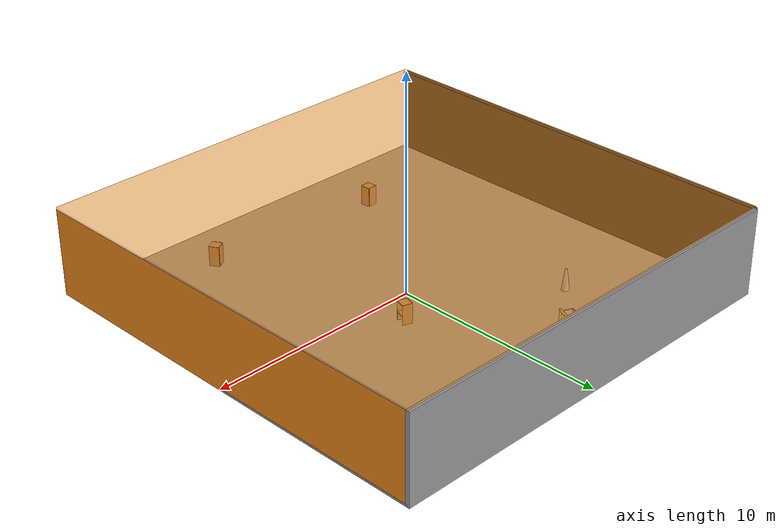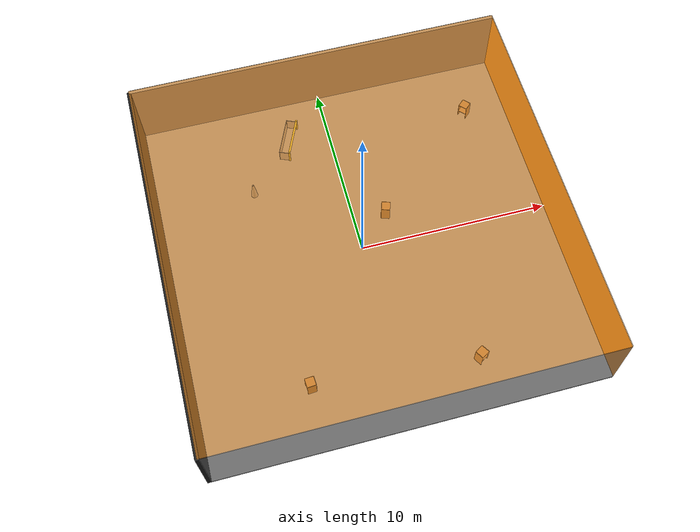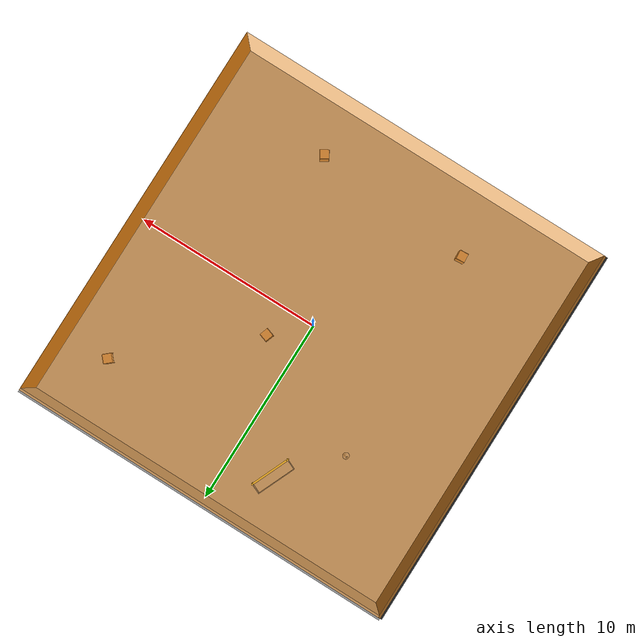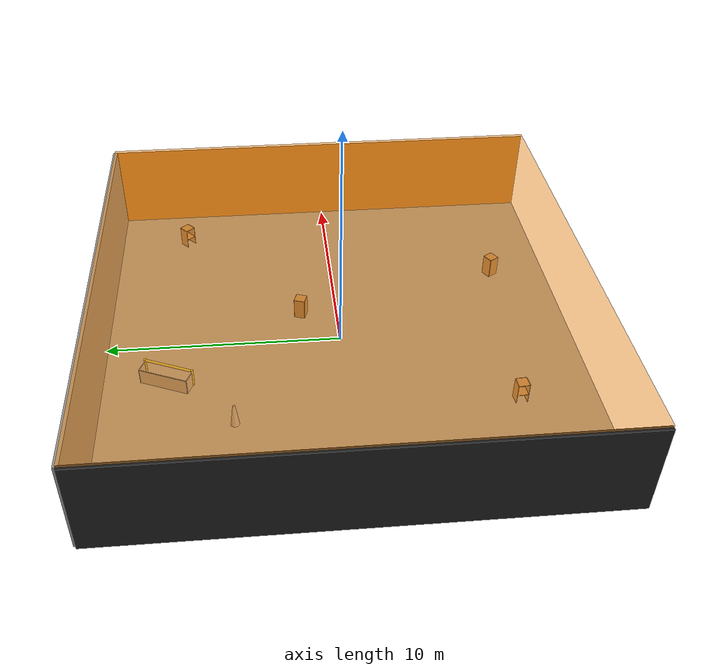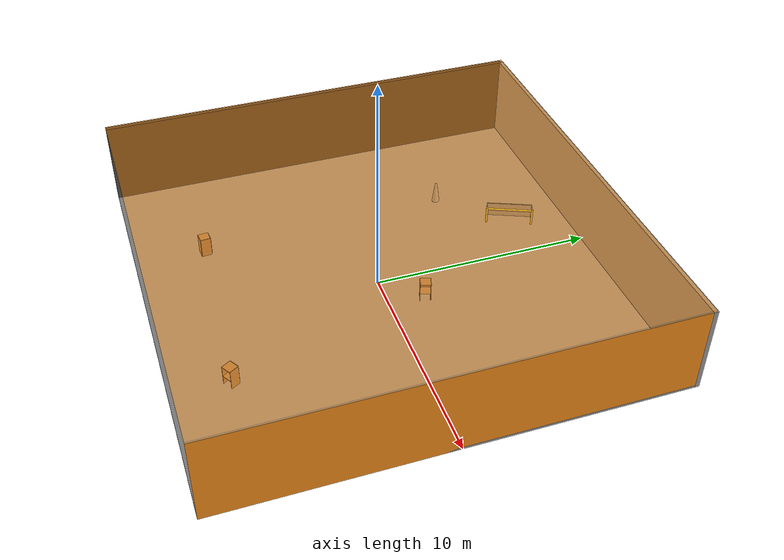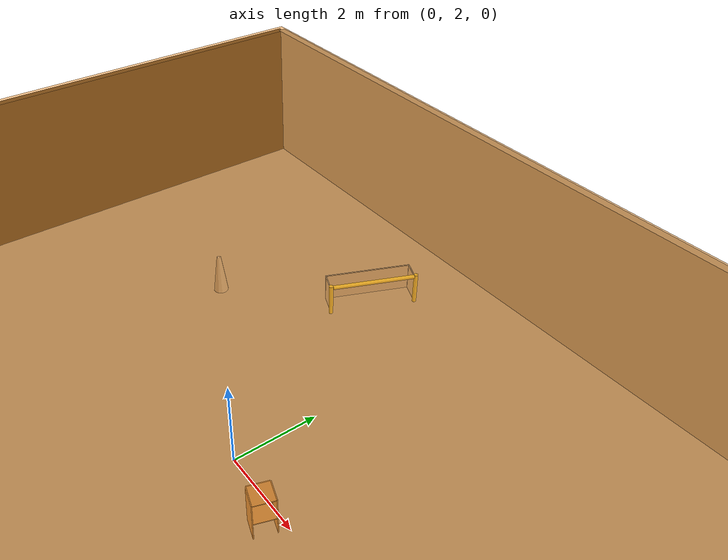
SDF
<sdf version="1.4">
 <world name="default">
  <physics type="ode">
   <max_step_size>0.001</max_step_size>
   <real_time_factor>1</real_time_factor>
   <real_time_update_rate>1000</real_time_update_rate>
   <gravity>0 0 -9.8</gravity>
  </physics>
  <scene><ambient>0.4 0.4 0.4 1</ambient><background>0.7 0.7 0.7 1</background><shadows>1</shadows></scene>
  <model name="Surrounding">
   <static>1</static>
   <link name="Ceiling">
    <collision name="Ceiling_Collision"><geometry><box><size>20 20 0.1</size></box></geometry></collision>
    <visual name="Ceiling_Visual">
     <geometry><box><size>20 20 0.1</size></box></geometry>
     <material>
      <script>
       <uri>file://media/materials/scripts/gazebo.material</uri>
       <name>Gazebo/OrangeTransparent</name>
      </script>
     </material>
    </visual>
    <pose>0 0 4.05 0 0 0</pose>
   </link>
   <link name="Wall_South">
    <collision name="Wall_South_Collision">
     <geometry><box><size>20 0 4</size></box></geometry>
     <pose>0 0 2 0 -0 0</pose>
    </collision>
    <visual name="Wall_South_Visual">
     <pose>0 0 2 0 -0 0</pose>
     <geometry><box><size>20 0 4</size></box></geometry>
     <material>
      <script><uri>file://media/materials/scripts/gazebo.material</uri><name>Gazebo/GreyTransparent</name></script>
     </material>
    </visual>
    <velocity_decay><linear>0</linear><angular>0</angular></velocity_decay>
    <pose>0 -10 0 0 -0 0</pose>
   </link>
   <link name="Wall_East">
    <collision name="Wall_21_Collision">
     <geometry><box><size>20 0 4</size></box></geometry>
     <pose>0 0 2 0 -0 0</pose>
    </collision>
    <visual name="Wall_21_Visual">
     <pose>0 0 2 0 -0 0</pose>
     <geometry><box><size>20 0 4</size></box></geometry>
     <material>
      <script><uri>file://media/materials/scripts/gazebo.material</uri><name>Gazebo/Orange</name></script>
     </material>
    </visual>
    <velocity_decay><linear>0</linear><angular>0</angular></velocity_decay>
    <pose>10 0 0 0 -0 1.5708</pose>
   </link>
   <link name="Wall_North">
    <collision name="Wall_22_Collision">
     <geometry><box><size>20 0.2 4</size></box></geometry>
     <pose>0 0 2 0 -0 0</pose>
    </collision>
    <visual name="Wall_22_Visual">
     <pose>0 0 2 0 -0 0</pose>
     <geometry><box><size>20 0.2 4</size></box></geometry>
     <material>
      <script><uri>file://media/materials/scripts/gazebo.material</uri><name>Gazebo/Grey</name></script>
     </material>
    </visual>
    <velocity_decay><linear>0</linear><angular>0</angular></velocity_decay>
    <pose>0 10 0 0 -0 0</pose>
   </link>
   <link name="Wall_West">
    <collision name="Wall_23_Collision">
     <geometry><box><size>20 0.2 4</size></box></geometry>
     <pose>0 0 2 0 -0 0</pose>
    </collision>
    <visual name="Wall_23_Visual">
     <pose>0 0 2 0 -0 0</pose>
     <geometry><box><size>20 0.2 4</size></box></geometry>
     <material>
      <script><uri>file://media/materials/scripts/gazebo.material</uri><name>Gazebo/Black</name></script>
     </material>
    </visual>
    <velocity_decay><linear>0</linear><angular>0</angular></velocity_decay>
    <pose>-10 0 0 0 0 -1.5708</pose>
   </link>
   <link name="Ground_link">
    <collision name="collision">
     <pose>0 0 .05 0 -0 0</pose>
     <geometry><box><size>20 20 0.1</size></box></geometry>
    </collision>
    <visual name="visual">
     <pose>0 0 .05 0 -0 0</pose>
     <geometry><box><size>20 20 0.1</size></box></geometry>
     <material>
      <script><uri>file://media/materials/scripts/gazebo.material</uri><name>Gazebo/Grey</name></script>
     </material>
    </visual>
   </link>
   <static>1</static>
  </model>
  <spherical_coordinates>
   <surface_model>EARTH_WGS84</surface_model>
   <latitude_deg>0</latitude_deg>
   <longitude_deg>0</longitude_deg>
   <elevation>0</elevation>
   <heading_deg>0</heading_deg>
  </spherical_coordinates>
  <light name="lightball_0" type="diffuse">
   <diffuse>0.8 0.8 0.8 1</diffuse>
   <specular>0.2 0.2 0.2 1</specular>
   <attenuation>
    <range>100</range>
    <constant>0.7</constant>
    <linear>0.01</linear>
    <quadratic>0.001</quadratic>
   </attenuation>
   <direction>-0.5 0.1 -0.9</direction>
   <pose>9.38858758982 -5.56260609873 0.645806967856 0 0 0</pose>
  </light>
  <light name="lightball_1" type="diffuse">
   <diffuse>0.8 0.8 0.8 1</diffuse>
   <specular>0.2 0.2 0.2 1</specular>
   <attenuation>
    <range>100</range>
    <constant>0.7</constant>
    <linear>0.01</linear>
    <quadratic>0.001</quadratic>
   </attenuation>
   <direction>-0.5 0.1 -0.9</direction>
   <pose>-5.81458333402 -9.21549633081 2.65915791697 0 0 0</pose>
  </light>
  <light name="lightball_2" type="diffuse">
   <diffuse>0.8 0.8 0.8 1</diffuse>
   <specular>0.2 0.2 0.2 1</specular>
   <attenuation>
    <range>100</range>
    <constant>0.7</constant>
    <linear>0.01</linear>
    <quadratic>0.001</quadratic>
   </attenuation>
   <direction>-0.5 0.1 -0.9</direction>
   <pose>-3.62902287758 7.54922041508 1.48035290208 0 0 0</pose>
  </light>
  <light name="lightball_3" type="diffuse">
   <diffuse>0.8 0.8 0.8 1</diffuse>
   <specular>0.2 0.2 0.2 1</specular>
   <attenuation>
    <range>100</range>
    <constant>0.7</constant>
    <linear>0.01</linear>
    <quadratic>0.001</quadratic>
   </attenuation>
   <direction>-0.5 0.1 -0.9</direction>
   <pose>4.63037007766 -6.92837672781 2.64482855079 0 0 0</pose>
  </light>
  <light name="lightball_4" type="diffuse">
   <diffuse>0.8 0.8 0.8 1</diffuse>
   <specular>0.2 0.2 0.2 1</specular>
   <attenuation>
    <range>100</range>
    <constant>0.7</constant>
    <linear>0.01</linear>
    <quadratic>0.001</quadratic>
   </attenuation>
   <direction>-0.5 0.1 -0.9</direction>
   <pose>6.61212099242 -6.89191242693 2.88415443719 0 0 0</pose>
  </light>
  <light name="lightball_5" type="diffuse">
   <diffuse>0.8 0.8 0.8 1</diffuse>
   <specular>0.2 0.2 0.2 1</specular>
   <attenuation>
    <range>100</range>
    <constant>0.7</constant>
    <linear>0.01</linear>
    <quadratic>0.001</quadratic>
   </attenuation>
   <direction>-0.5 0.1 -0.9</direction>
   <pose>9.18683501946 1.06572613309 0.552391786973 0 0 0</pose>
  </light>
  <light name="lightball_6" type="diffuse">
   <diffuse>0.8 0.8 0.8 1</diffuse>
   <specular>0.2 0.2 0.2 1</specular>
   <attenuation>
    <range>100</range>
    <constant>0.7</constant>
    <linear>0.01</linear>
    <quadratic>0.001</quadratic>
   </attenuation>
   <direction>-0.5 0.1 -0.9</direction>
   <pose>-2.0675644256 0.418231509405 0.567631858735 0 0 0</pose>
  </light>
  <light name="lightball_7" type="diffuse">
   <diffuse>0.8 0.8 0.8 1</diffuse>
   <specular>0.2 0.2 0.2 1</specular>
   <attenuation>
    <range>100</range>
    <constant>0.7</constant>
    <linear>0.01</linear>
    <quadratic>0.001</quadratic>
   </attenuation>
   <direction>-0.5 0.1 -0.9</direction>
   <pose>5.85528820085 -1.43493827765 2.03134574806 0 0 0</pose>
  </light>
  <include><uri>model://cabinet</uri><pose>-4.39303661722 -6.79759188596 0 0 0 0.075627497427</pose></include>
  <include>
   <uri>model://construction_cone</uri>
   <pose>-4.80227399268 4.56608462348 0 0 0 1.74373803268</pose>
  </include>
  <include>
   <uri>model://robocup_3Dsim_goal</uri>
   <pose>-2.04001440546 7.20748899511 0 0 0 2.73498474853</pose>
  </include>
  <include><uri>model://cabinet</uri><pose>1.694822378 1.59933952186 0 0 0 2.81622775802</pose></include>
  <include><uri>model://cabinet</uri><pose>4.03920548127 -7.45347663609 0 0 0 2.1158294782</pose></include>
  <include><uri>model://cabinet</uri><pose>7.6796603539 6.74341797433 0 0 0 0.733235612399</pose></include>
 </world>
</sdf>

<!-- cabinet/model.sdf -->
<sdf version="1.5">
  <model name="cabinet">
    <static>true</static>
    <link name="cabinet_bottom_plate">
      <inertial>
        <pose>0 0 -1 0 0 0</pose>
        <inertia>
          <ixx>2.050000</ixx>
          <ixy>0</ixy>
          <ixz>0</ixz>
          <iyy>2.050000</iyy>
          <iyz>0</iyz>
          <izz>2.050000</izz>
        </inertia>
        <mass>25.000000</mass>
      </inertial>
      <collision name="cabinet_bottom_plate_geom">
        <pose>0 0 0.010000 0 0 0</pose>
        <geometry>
          <box>
            <size>0.450000 0.450000 0.020000</size>
          </box>
        </geometry>
      </collision>
      <visual name="cabinet_bottom_plate_geom_visual">
        <pose>0 0 0.010000 0 0 0</pose>
        <geometry>
          <box>
            <size>0.450000 0.450000 0.020000</size>
          </box>
        </geometry>
        <material>
          <script>
            <uri>model://media/materials/scripts/gazebo.material</uri>
            <name>Gazebo/Wood</name>
          </script>
        </material>
      </visual>
      <collision name="cabinet_bottom_plate_geom_cabinet_back_plate">
        <pose>0.235000 0 0.510000 0 0 0</pose>
        <geometry>
          <box>
            <size>0.020000 0.450000 1.020000</size>
          </box>
        </geometry>
      </collision>
      <visual name="cabinet_bottom_plate_geom_cabinet_back_plate_visual">
        <pose>0.235000 0 0.510000 0 0 0</pose>
        <geometry>
          <box>
            <size>0.020000 0.450000 1.020000</size>
          </box>
        </geometry>
        <material>
          <script>
            <uri>model://media/materials/scripts/gazebo.material</uri>
            <name>Gazebo/Wood</name>
          </script>
        </material>
      </visual>
      <collision name="cabinet_bottom_plate_geom_cabinet_left_plate">
        <pose>0 0.235000 0.510000 0 0 0</pose>
        <geometry>
          <box>
            <size>0.450000 0.020000 1.020000</size>
          </box>
        </geometry>
      </collision>
      <visual name="cabinet_bottom_plate_geom_cabinet_left_plate_visual">
        <pose>0 0.235000 0.510000 0 0 0</pose>
        <geometry>
          <box>
            <size>0.450000 0.020000 1.020000</size>
          </box>
        </geometry>
        <material>
          <script>
            <uri>model://media/materials/scripts/gazebo.material</uri>
            <name>Gazebo/Wood</name>
          </script>
        </material>
      </visual>
      <collision name="cabinet_bottom_plate_geom_cabinet_middle_plate">
        <pose>0 0 0.510000 0 0 0</pose>
        <geometry>
          <box>
            <size>0.450000 0.450000 0.020000</size>
          </box>
        </geometry>
      </collision>
      <visual name="cabinet_bottom_plate_geom_cabinet_middle_plate_visual">
        <pose>0 0 0.510000 0 0 0</pose>
        <geometry>
          <box>
            <size>0.450000 0.450000 0.020000</size>
          </box>
        </geometry>
        <material>
          <script>
            <uri>model://media/materials/scripts/gazebo.material</uri>
            <name>Gazebo/Wood</name>
          </script>
        </material>
      </visual>
      <collision name="cabinet_bottom_plate_geom_cabinet_right_plate">
        <pose>0 -0.235000 0.510000 0 0 0</pose>
        <geometry>
          <box>
            <size>0.450000 0.020000 1.020000</size>
          </box>
        </geometry>
      </collision>
      <visual name="cabinet_bottom_plate_geom_cabinet_right_plate_visual">
        <pose>0 -0.235000 0.510000 0 0 0</pose>
        <geometry>
          <box>
            <size>0.450000 0.020000 1.020000</size>
          </box>
        </geometry>
        <material>
          <script>
            <uri>model://media/materials/scripts/gazebo.material</uri>
            <name>Gazebo/Wood</name>
          </script>
        </material>
      </visual>
      <collision name="cabinet_bottom_plate_geom_cabinet_top_plate">
        <pose>0 0 1.010000 0 0 0</pose>
        <geometry>
          <box>
            <size>0.450000 0.450000 0.020000</size>
          </box>
        </geometry>
      </collision>
      <visual name="cabinet_bottom_plate_geom_cabinet_top_plate_visual">
        <pose>0 0 1.010000 0 0 0</pose>
        <geometry>
          <box>
            <size>0.450000 0.450000 0.020000</size>
          </box>
        </geometry>
        <material>
          <script>
            <uri>model://media/materials/scripts/gazebo.material</uri>
            <name>Gazebo/Wood</name>
          </script>
        </material>
      </visual>
    </link>
  </model>
</sdf>

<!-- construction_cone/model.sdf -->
<sdf version="1.5">
  <model name="Construction Cone">
    <link name="link">
      <collision name="collision">
        <geometry>
          <mesh>
            <scale>10 10 10</scale>
            <uri>file://isr-testbed/construction_cone/meshes/construction_cone.dae</uri>
          </mesh>
        </geometry>
      </collision>
      <visual name="visual">
        <geometry>
          <mesh>
            <scale>10 10 10</scale>
            <uri>file://isr-testbed/construction_cone/meshes/construction_cone.dae</uri>
          </mesh>
        </geometry>
      </visual>
    </link>
  </model>
</sdf>

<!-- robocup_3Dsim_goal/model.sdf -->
<sdf version="1.5">
  <model name="robocup_3d_goal">
    <static>true</static>
    <link name="left_post">
      <pose>0 1.05 0.45 0 0 0</pose>
      <collision name="collision">
        <geometry>
          <cylinder>
            <radius>0.05</radius>
            <length>0.9</length>
          </cylinder>
        </geometry>
      </collision>
      <visual name="visual">
        <geometry>
          <cylinder>
            <radius>0.05</radius>
            <length>0.9</length>
          </cylinder>
        </geometry>
        <material>
          <script>
            <uri>file://media/materials/scripts/gazebo.material</uri>
            <name>Gazebo/ZincYellow</name>
          </script>
        </material>
      </visual>
    </link>
    <link name="left_support_horiz_lower">
      <pose>0.30 1.05 0.01 0 0 0</pose>
      <collision name="collision">
        <geometry>
          <box>
            <size>0.50 0.02 0.02</size>
          </box>
        </geometry>
      </collision>
      <visual name="visual">
        <geometry>
          <box>
            <size>0.50 0.02 0.02</size>
          </box>
        </geometry>
        <material>
          <script>
            <uri>file://media/materials/scripts/gazebo.material</uri>
            <name>Gazebo/White</name>
          </script>
        </material>
      </visual>
    </link>
    <link name="left_support_horiz_upper">
      <pose>0.30 1.05 0.79 0 0 0</pose>
      <collision name="collision">
        <geometry>
          <box>
            <size>0.50 0.02 0.02</size>
          </box>
        </geometry>
      </collision>
      <visual name="visual">
        <geometry>
          <box>
            <size>0.50 0.02 0.02</size>
          </box>
        </geometry>
        <material>
          <script>
            <uri>file://media/materials/scripts/gazebo.material</uri>
            <name>Gazebo/White</name>
          </script>
        </material>
      </visual>
    </link>
    <link name="left_support_vertical">
      <pose>0.56 1.05 0.4 0 1.5708 0</pose>
      <collision name="collision">
        <geometry>
          <box>
            <size>0.80 0.02 0.02</size>
          </box>
        </geometry>
      </collision>
      <visual name="visual">
        <geometry>
          <box>
            <size>0.80 0.02 0.02</size>
          </box>
        </geometry>
        <material>
          <script>
            <uri>file://media/materials/scripts/gazebo.material</uri>
            <name>Gazebo/White</name>
          </script>
        </material>
      </visual>
    </link>
    <link name="right_support_horiz_lower">
      <pose>0.30 -1.05 0.01 0 0 0</pose>
      <collision name="collision">
        <geometry>
          <box>
            <size>0.50 0.02 0.02</size>
          </box>
        </geometry>
      </collision>
      <visual name="visual">
        <geometry>
          <box>
            <size>0.50 0.02 0.02</size>
          </box>
        </geometry>
        <material>
          <script>
            <uri>file://media/materials/scripts/gazebo.material</uri>
            <name>Gazebo/White</name>
          </script>
        </material>
      </visual>
    </link>
    <link name="right_support_horiz_upper">
      <pose>0.30 -1.05 0.79 0 0 0</pose>
      <collision name="collision">
        <geometry>
          <box>
            <size>0.50 0.02 0.02</size>
          </box>
        </geometry>
      </collision>
      <visual name="visual">
        <geometry>
          <box>
            <size>0.50 0.02 0.02</size>
          </box>
        </geometry>
        <material>
          <script>
            <uri>file://media/materials/scripts/gazebo.material</uri>
            <name>Gazebo/White</name>
          </script>
        </material>
      </visual>
    </link>
    <link name="right_support_vertical">
      <pose>0.56 -1.05 0.4 0 1.5708 0</pose>
      <collision name="collision">
        <geometry>
          <box>
            <size>0.80 0.02 0.02</size>
          </box>
        </geometry>
      </collision>
      <visual name="visual">
        <geometry>
          <box>
            <size>0.80 0.02 0.02</size>
          </box>
        </geometry>
        <material>
          <script>
            <uri>file://media/materials/scripts/gazebo.material</uri>
            <name>Gazebo/White</name>
          </script>
        </material>
      </visual>
    </link>
    <link name="center_support_horiz_lower">
      <pose>0.56 0 0.01 0 1.5708 0</pose>
      <collision name="collision">
        <geometry>
          <box>
            <size>0.02 2.08 0.02</size>
          </box>
        </geometry>
      </collision>
      <visual name="visual">
        <geometry>
          <box>
            <size>0.02 2.08 0.02</size>
          </box>
        </geometry>
        <material>
          <script>
            <uri>file://media/materials/scripts/gazebo.material</uri>
            <name>Gazebo/White</name>
          </script>
        </material>
      </visual>
    </link>
    <link name="center_support_horiz_upper">
      <pose>0.56 0 0.79 0 1.5708 0</pose>
      <collision name="collision">
        <geometry>
          <box>
            <size>0.02 2.08 0.02</size>
          </box>
        </geometry>
      </collision>
      <visual name="visual">
        <geometry>
          <box>
            <size>0.02 2.08 0.02</size>
          </box>
        </geometry>
        <material>
          <script>
            <uri>file://media/materials/scripts/gazebo.material</uri>
            <name>Gazebo/White</name>
          </script>
        </material>
      </visual>
    </link>
    <link name="right_post">
      <pose>0 -1.05 0.45 0 0 0</pose>
      <collision name="collision">
        <geometry>
          <cylinder>
            <radius>0.05</radius>
            <length>0.9</length>
          </cylinder>
        </geometry>
      </collision>
      <visual name="visual">
        <geometry>
          <cylinder>
            <radius>0.05</radius>
            <length>0.9</length>
          </cylinder>
        </geometry>
        <material>
          <script>
            <uri>file://media/materials/scripts/gazebo.material</uri>
            <name>Gazebo/ZincYellow</name>
          </script>
        </material>
      </visual>
    </link>
    <link name="crossbar">
      <pose>0 0 0.85 1.57 1.57 0</pose>
      <collision name="collision">
        <geometry>
          <cylinder>
            <radius>0.05</radius>
            <length>2.0</length>
          </cylinder>
        </geometry>
      </collision>
      <visual name="visual">
        <geometry>
          <cylinder>
            <radius>0.05</radius>
            <length>2.0</length>
          </cylinder>
        </geometry>
        <material>
          <script>
            <uri>file://media/materials/scripts/gazebo.material</uri>
            <name>Gazebo/ZincYellow</name>
          </script>
        </material>
      </visual>
    </link>
    <link name="center_net">
      <pose>0.56 0 0.40 0 0 0</pose>
      <collision name="collision">
        <geometry>
          <box>
            <size>0.01 2.1 0.80</size>
          </box>
        </geometry>
      </collision>
      <visual name="visual">
        <geometry>
          <box>
            <size>0.01 2.1 0.80</size>
          </box>
        </geometry>
        <material>
          <script>
            <uri>model://../model_source/models/robocup09_spl_field/materials/scripts/</uri>
            <uri>model://../model_source/models/robocup09_spl_field/materials/textures/</uri>
            <name>RoboCup/Net</name>
          </script>
        </material>
      </visual>
    </link>
    <link name="left_net">
      <pose>0.30 1.05 0.40 0 0 0</pose>
      <collision name="collision">
        <geometry>
          <box>
            <size>0.50 0.01 0.76</size>
          </box>
        </geometry>
      </collision>
      <visual name="visual">
        <geometry>
          <box>
            <size>0.50 0.01 0.76</size>
          </box>
        </geometry>
        <material>
          <script>
            <uri>model://../model_source/models/robocup09_spl_field/materials/scripts/</uri>
            <uri>model://../model_source/models/robocup09_spl_field/materials/textures/</uri>
            <name>RoboCup/Net</name>
          </script>
        </material>
      </visual>
    </link>
    <link name="right_net">
      <pose>0.30 -1.05 0.40 0 0 0</pose>
      <collision name="collision">
        <geometry>
          <box>
            <size>0.50 0.01 0.76</size>
          </box>
        </geometry>
      </collision>
      <visual name="visual">
        <geometry>
          <box>
            <size>0.50 0.01 0.76</size>
          </box>
        </geometry>
        <material>
          <script>
            <uri>model://../model_source/models/robocup09_spl_field/materials/scripts/</uri>
            <uri>model://../model_source/models/robocup09_spl_field/materials/textures/</uri>
            <name>RoboCup/Net</name>
          </script>
        </material>
      </visual>
    </link>
  </model>
</sdf>
